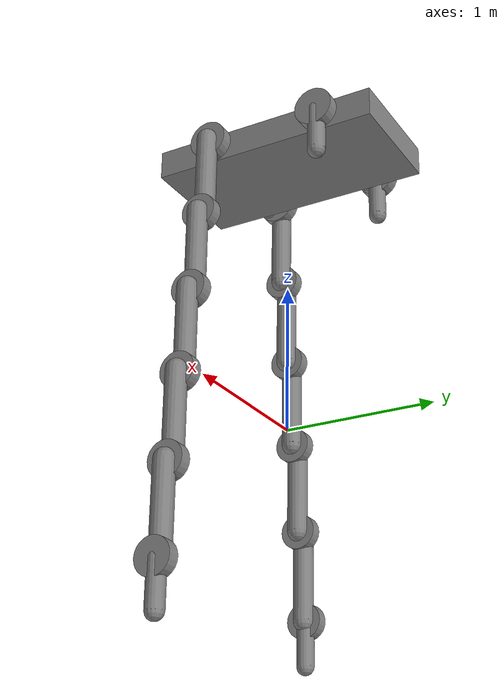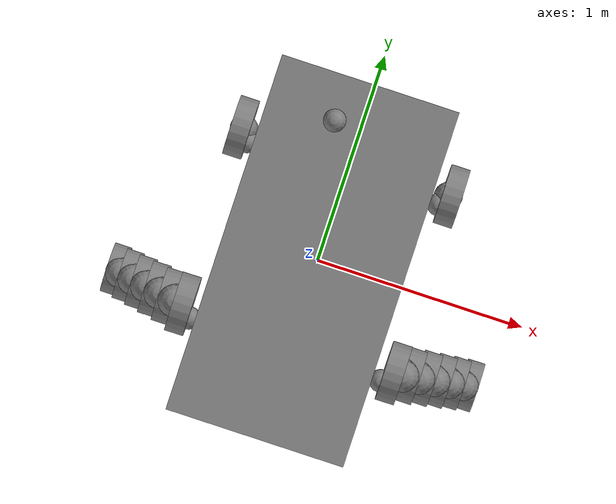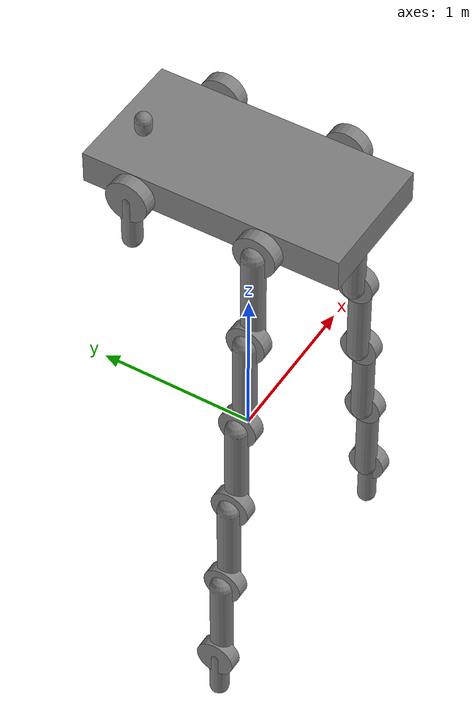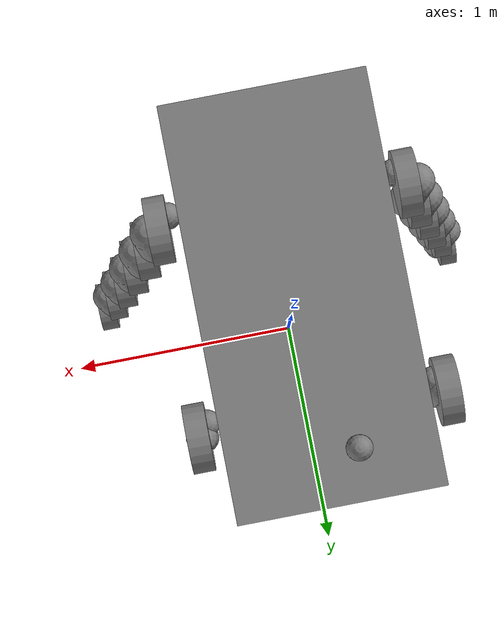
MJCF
<mujoco model="xmlrobot7_0_0">
	<compiler inertiafromgeom="true" />
	<option gravity="0 0 -9.8" />
	<size nconmax="500" njmax="1000" />
	<custom />
	<default />
	<asset />
	<worldbody>
		<body name="root" pos="0 0 2" quat="1.0 0.0 0.0 0.0">
			<geom name="geomroot" pos="-0.02 0 0.07" quat="1.0 0.0 0.0 0.0" size="0.15 0.15 0.02" type="box" />
			<body name="body1" pos="0 0 0" quat="1.0 0.0 0.0 0.0">
				<geom name="geombody1" pos="-0.02 0 0" quat="1.0 0.0 0.0 0.0" size="0.4 0.8 0.1" type="box" />
				<joint axis="0 0 1" damping="1.0" limited="true" name="joint_joint1" pos="0 0 0" range="-5 5" stiffness="2.0" type="hinge" />
				<body name="hand_mount1" pos="-0.1175 0.6 0.2" quat="0.70711 0.0 0.70711 0.0">
					<geom fromto="0 0 0 0.05 0 0" name="geomhand_mount1" quat="1.0 0.0 0.0 0.0" size="0.05" type="capsule" />
					<joint axis="1 0 0" damping="1.0" limited="true" name="joint_joint6" pos="0 0 0" range="-180 180" stiffness="2.0" type="hinge" />
				</body>
				<body name="limbmount4" pos="0.42 -0.4 0" quat="0.70711 0.0 0.70711 0.0">
					<geom fromto="0 0 0 0.05 0 0" name="geomlimbmount4" quat="1.0 0.0 0.0 0.0" size="0.05" type="capsule" />
					<joint axis="0 1 0" damping="1.0" limited="true" name="joint_joint5" pos="0 0 0" range="-45 45" stiffness="2.0" type="hinge" />
					<body name="limbmount4_new_new" pos="0 0.05 0" quat="0.70711 0.0 -0.70711 0.0">
						<geom euler="0 0 0" fromto="0 0 0 0.084 0 0" name="geomlimbmount4_new_new" pos="0 0 0" size="0.132" type="cylinder" />
						<joint axis="1 0 0" damping="1.0" limited="true" name="joint_limbmount4_new" pos="0 0 0" range="-45 45" stiffness="2.0" type="hinge" />
						<body name="limbmount4_new_new_new_new" pos="0.084 0 0" quat="0.70711 0.0 0.70711 0.0">
							<geom fromto="0 0 0 0.6 0 0" name="geomlimbmount4_new_new_new_new" quat="1.0 0.0 0.0 0.0" size="0.07" type="capsule" />
							<joint axis="0 1 0" damping="1.0" limited="true" name="joint_limbmount4_new_new_new" pos="0 0 0" range="-45 45" stiffness="2.0" type="hinge" />
							<body name="limbmount4_new_new_new_new_new_new" pos="0.6 0 0" quat="0.70711 0.0 -0.70711 0.0">
								<geom euler="0 0 0" fromto="0 0 0 0.084 0 0" name="geomlimbmount4_new_new_new_new_new_new" pos="0 0 0" size="0.122" type="cylinder" />
								<joint axis="1 0 0" damping="1.0" limited="true" name="joint_limbmount4_new_new_new_new_new" pos="0 0 0" range="-45 45" stiffness="2.0" type="hinge" />
								<body name="limbmount4_new_new_new_new_new_new_new_new" pos="0.084 0 0" quat="0.70711 0.0 0.70711 0.0">
									<geom fromto="0 0 0 0.6 0 0" name="geomlimbmount4_new_new_new_new_new_new_new_new" quat="1.0 0.0 0.0 0.0" size="0.07" type="capsule" />
									<joint axis="0 1 0" damping="1.0" limited="true" name="joint_limbmount4_new_new_new_new_new_new_new" pos="0 0 0" range="-45 45" stiffness="2.0" type="hinge" />
									<body name="limbmount4_new_new_new_new_new_new_new_new_new_new" pos="0.6 0 0" quat="0.70711 0.0 -0.70711 0.0">
										<geom euler="0 0 0" fromto="0 0 0 0.084 0 0" name="geomlimbmount4_new_new_new_new_new_new_new_new_new_new" pos="0 0 0" size="0.122" type="cylinder" />
										<joint axis="1 0 0" damping="1.0" limited="true" name="joint_limbmount4_new_new_new_new_new_new_new_new_new" pos="0 0 0" range="-45 45" stiffness="2.0" type="hinge" />
										<body name="limbmount4_new_new_new_new_new_new_new_new_new_new_new_new" pos="0.084 0 0" quat="0.70711 0.0 0.70711 0.0">
											<geom fromto="0 0 0 0.6 0 0" name="geomlimbmount4_new_new_new_new_new_new_new_new_new_new_new_new" quat="1.0 0.0 0.0 0.0" size="0.07" type="capsule" />
											<joint axis="0 1 0" damping="1.0" limited="true" name="joint_limbmount4_new_new_new_new_new_new_new_new_new_new_new" pos="0 0 0" range="-45 45" stiffness="2.0" type="hinge" />
											<body name="limbmount4_new_new_new_new_new_new_new_new_new_new_new_new_new_new" pos="0.6 0 0" quat="0.70711 0.0 -0.70711 0.0">
												<geom euler="0 0 0" fromto="0 0 0 0.084 0 0" name="geomlimbmount4_new_new_new_new_new_new_new_new_new_new_new_new_new_new" pos="0 0 0" size="0.122" type="cylinder" />
												<joint axis="1 0 0" damping="1.0" limited="true" name="joint_limbmount4_new_new_new_new_new_new_new_new_new_new_new_new_new" pos="0 0 0" range="-45 45" stiffness="2.0" type="hinge" />
												<body name="limbmount4_new_new_new_new_new_new_new_new_new_new_new_new_new_new_new_new" pos="0.084 0 0" quat="0.70711 0.0 0.70711 0.0">
													<geom fromto="0 0 0 0.6 0 0" name="geomlimbmount4_new_new_new_new_new_new_new_new_new_new_new_new_new_new_new_new" quat="1.0 0.0 0.0 0.0" size="0.07" type="capsule" />
													<joint axis="0 1 0" damping="1.0" limited="true" name="joint_limbmount4_new_new_new_new_new_new_new_new_new_new_new_new_new_new_new" pos="0 0 0" range="-45 45" stiffness="2.0" type="hinge" />
													<body name="limbmount4_new_new_new_new_new_new_new_new_new_new_new_new_new_new_new_new_new_new" pos="0.6 0 0" quat="0.70711 0.0 -0.70711 0.0">
														<geom euler="0 0 0" fromto="0 0 0 0.084 0 0" name="geomlimbmount4_new_new_new_new_new_new_new_new_new_new_new_new_new_new_new_new_new_new" pos="0 0 0" size="0.122" type="cylinder" />
														<joint axis="1 0 0" damping="1.0" limited="true" name="joint_limbmount4_new_new_new_new_new_new_new_new_new_new_new_new_new_new_new_new_new" pos="0 0 0" range="-45 45" stiffness="2.0" type="hinge" />
														<body name="limbmount4_new_new_new_new_new_new_new_new_new_new_new_new_new_new_new_new_new_new_new_new" pos="0.084 0 0" quat="0.70711 0.0 0.70711 0.0">
															<geom fromto="0 0 0 0.6 0 0" name="geomlimbmount4_new_new_new_new_new_new_new_new_new_new_new_new_new_new_new_new_new_new_new_new" quat="1.0 0.0 0.0 0.0" size="0.07" type="capsule" />
															<joint axis="0 1 0" damping="1.0" limited="true" name="joint_limbmount4_new_new_new_new_new_new_new_new_new_new_new_new_new_new_new_new_new_new_new" pos="0 0 0" range="-45 45" stiffness="2.0" type="hinge" />
															<body name="limbmount4_new_new_new_new_new_new_new_new_new_new_new_new_new_new_new_new_new_new_new_new_new_new" pos="0.6 0 0" quat="0.70711 0.0 -0.70711 0.0">
																<geom euler="0 0 0" fromto="0 0 0 0.084 0 0" name="geomlimbmount4_new_new_new_new_new_new_new_new_new_new_new_new_new_new_new_new_new_new_new_new_new_new" pos="0 0 0" size="0.122" type="cylinder" />
																<joint axis="1 0 0" damping="1.0" limited="true" name="joint_limbmount4_new_new_new_new_new_new_new_new_new_new_new_new_new_new_new_new_new_new_new_new_new" pos="0 0 0" range="-45 45" stiffness="2.0" type="hinge" />
																<body name="limbmount4_new_new_new_new_new_new_new_new_new_new_new_new_new_new_new_new_new_new_new_new_new_new_new_new" pos="0.03 0 0" quat="0.70711 0.0 0.70711 0.0">
																	<geom fromto="0 0 0 0.3 0 0" name="geomlimbmount4_new_new_new_new_new_new_new_new_new_new_new_new_new_new_new_new_new_new_new_new_new_new_new_new" quat="1.0 0.0 0.0 0.0" size="0.06" type="capsule" />
																	<joint axis="0 1 0" damping="1.0" limited="true" name="joint_limbmount4_new_new_new_new_new_new_new_new_new_new_new_new_new_new_new_new_new_new_new_new_new_new_new" pos="0 0 0" range="-45 45" stiffness="2.0" type="hinge" />
																</body>
															</body>
														</body>
													</body>
												</body>
											</body>
										</body>
									</body>
								</body>
							</body>
						</body>
					</body>
				</body>
				<body name="limbmount3" pos="-0.45 -0.4 0" quat="0.70711 0.0 0.70711 0.0">
					<geom fromto="0 0 0 0.05 0 0" name="geomlimbmount3" quat="-6.123233995736766e-17 1.0 0.0 0.0" size="0.05" type="capsule" />
					<joint axis="0 1 0" damping="1.0" limited="true" name="joint_joint4" pos="0 0 0" range="-45 45" stiffness="2.0" type="hinge" />
					<body name="motor1" pos="0 0.05 0" quat="-4.329780281177467e-17 0.7071067811865475 4.329780281177467e-17 -0.7071067811865477">
						<geom euler="0 0 0" fromto="0 0 0 0.084 0 0" name="geommotor1" pos="0 0 0" size="0.132" type="cylinder" />
						<joint axis="1 0 0" damping="1.0" limited="true" name="joint_joint7" pos="0 0 0" range="-45 45" stiffness="2.0" type="hinge" />
						<body name="limblink2" pos="0.084 0 0" quat="0.70711 0.0 0.70711 0.0">
							<geom fromto="0 0 0 0.6 0 0" name="geomlimblink2" quat="1.0 0.0 0.0 0.0" size="0.07" type="capsule" />
							<joint axis="0 1 0" damping="1.0" limited="true" name="joint_joint10" pos="0 0 0" range="-45 45" stiffness="2.0" type="hinge" />
							<body name="motor_link_end1" pos="0.6 0 0" quat="0.70711 0.0 -0.70711 0.0">
								<geom euler="0 0 0" fromto="0 0 0 0.084 0 0" name="geommotor_link_end1" pos="0 0 0" size="0.122" type="cylinder" />
								<joint axis="1 0 0" damping="1.0" limited="true" name="joint_joint11" pos="0 0 0" range="-45 45" stiffness="2.0" type="hinge" />
								<body name="limblink3" pos="0.084 0 0" quat="0.70711 0.0 0.70711 0.0">
									<geom fromto="0 0 0 0.6 0 0" name="geomlimblink3" quat="1.0 0.0 0.0 0.0" size="0.07" type="capsule" />
									<joint axis="0 1 0" damping="1.0" limited="true" name="joint_joint12" pos="0 0 0" range="-45 45" stiffness="2.0" type="hinge" />
									<body name="motor_link_end2" pos="0.6 0 0" quat="0.70711 0.0 -0.70711 0.0">
										<geom euler="0 0 0" fromto="0 0 0 0.084 0 0" name="geommotor_link_end2" pos="0 0 0" size="0.122" type="cylinder" />
										<joint axis="1 0 0" damping="1.0" limited="true" name="joint_joint13" pos="0 0 0" range="-45 45" stiffness="2.0" type="hinge" />
										<body name="limblink4" pos="0.084 0 0" quat="0.70711 0.0 0.70711 0.0">
											<geom fromto="0 0 0 0.6 0 0" name="geomlimblink4" quat="1.0 0.0 0.0 0.0" size="0.07" type="capsule" />
											<joint axis="0 1 0" damping="1.0" limited="true" name="joint_joint14" pos="0 0 0" range="-45 45" stiffness="2.0" type="hinge" />
											<body name="motor_link_end3" pos="0.6 0 0" quat="0.70711 0.0 -0.70711 0.0">
												<geom euler="0 0 0" fromto="0 0 0 0.084 0 0" name="geommotor_link_end3" pos="0 0 0" size="0.122" type="cylinder" />
												<joint axis="1 0 0" damping="1.0" limited="true" name="joint_joint15" pos="0 0 0" range="-45 45" stiffness="2.0" type="hinge" />
												<body name="limblink5" pos="0.084 0 0" quat="0.70711 0.0 0.70711 0.0">
													<geom fromto="0 0 0 0.6 0 0" name="geomlimblink5" quat="1.0 0.0 0.0 0.0" size="0.07" type="capsule" />
													<joint axis="0 1 0" damping="1.0" limited="true" name="joint_joint16" pos="0 0 0" range="-45 45" stiffness="2.0" type="hinge" />
													<body name="motor_link_end4" pos="0.6 0 0" quat="0.70711 0.0 -0.70711 0.0">
														<geom euler="0 0 0" fromto="0 0 0 0.084 0 0" name="geommotor_link_end4" pos="0 0 0" size="0.122" type="cylinder" />
														<joint axis="1 0 0" damping="1.0" limited="true" name="joint_joint17" pos="0 0 0" range="-45 45" stiffness="2.0" type="hinge" />
														<body name="limblink6" pos="0.084 0 0" quat="0.70711 0.0 0.70711 0.0">
															<geom fromto="0 0 0 0.6 0 0" name="geomlimblink6" quat="1.0 0.0 0.0 0.0" size="0.07" type="capsule" />
															<joint axis="0 1 0" damping="1.0" limited="true" name="joint_joint18" pos="0 0 0" range="-45 45" stiffness="2.0" type="hinge" />
															<body name="motor_link_end5" pos="0.6 0 0" quat="0.70711 0.0 -0.70711 0.0">
																<geom euler="0 0 0" fromto="0 0 0 0.084 0 0" name="geommotor_link_end5" pos="0 0 0" size="0.122" type="cylinder" />
																<joint axis="1 0 0" damping="1.0" limited="true" name="joint_joint19" pos="0 0 0" range="-45 45" stiffness="2.0" type="hinge" />
																<body name="short_limblink2" pos="0.03 0 0" quat="0.70711 0.0 0.70711 0.0">
																	<geom fromto="0 0 0 0.3 0 0" name="geomshort_limblink2" quat="1.0 0.0 0.0 0.0" size="0.06" type="capsule" />
																	<joint axis="0 1 0" damping="1.0" limited="true" name="joint_joint20" pos="0 0 0" range="-45 45" stiffness="2.0" type="hinge" />
																</body>
															</body>
														</body>
													</body>
												</body>
											</body>
										</body>
									</body>
								</body>
							</body>
						</body>
					</body>
				</body>
				<body name="limbmount2" pos="-0.45 0.4 0" quat="0.70711 0.0 0.70711 0.0">
					<geom fromto="0 0 0 0.05 0 0" name="geomlimbmount2" quat="-6.123233995736766e-17 1.0 0.0 0.0" size="0.05" type="capsule" />
					<joint axis="0 1 0" damping="1.0" limited="true" name="joint_joint3" pos="0 0 0" range="-45 45" stiffness="2.0" type="hinge" />
					<body name="limbmount2_new_new" pos="0 0.05 0" quat="-4.329780281177467e-17 0.7071067811865475 4.329780281177467e-17 -0.7071067811865477">
						<geom euler="0 0 0" fromto="0 0 0 0.084 0 0" name="geomlimbmount2_new_new" pos="0 0 0" size="0.132" type="cylinder" />
						<joint axis="1 0 0" damping="1.0" limited="true" name="joint_limbmount2_new" pos="0 0 0" range="-45 45" stiffness="2.0" type="hinge" />
						<body name="limbmount2_new_new_new_new" pos="0.03 0 0" quat="0.70711 0.0 0.70711 0.0">
							<geom fromto="0 0 0 0.3 0 0" name="geomlimbmount2_new_new_new_new" quat="1.0 0.0 0.0 0.0" size="0.06" type="capsule" />
							<joint axis="0 1 0" damping="1.0" limited="true" name="joint_limbmount2_new_new_new" pos="0 0 0" range="-45 45" stiffness="2.0" type="hinge" />
						</body>
					</body>
				</body>
				<body name="limbmount1" pos="0.42 0.4 0" quat="0.70711 0.0 0.70711 0.0">
					<geom fromto="0 0 0 0.05 0 0" name="geomlimbmount1" quat="1.0 0.0 0.0 0.0" size="0.05" type="capsule" />
					<joint axis="0 1 0" damping="1.0" limited="true" name="joint_joint2" pos="0 0 0" range="-45 45" stiffness="2.0" type="hinge" />
					<body name="motor2" pos="0 0.05 0" quat="0.70711 0.0 -0.70711 0.0">
						<geom euler="0 0 0" fromto="0 0 0 0.084 0 0" name="geommotor2" pos="0 0 0" size="0.132" type="cylinder" />
						<joint axis="1 0 0" damping="1.0" limited="true" name="joint_joint8" pos="0 0 0" range="-45 45" stiffness="2.0" type="hinge" />
						<body name="short_limblink1" pos="0.03 0 0" quat="0.70711 0.0 0.70711 0.0">
							<geom fromto="0 0 0 0.3 0 0" name="geomshort_limblink1" quat="1.0 0.0 0.0 0.0" size="0.06" type="capsule" />
							<joint axis="0 1 0" damping="1.0" limited="true" name="joint_joint9" pos="0 0 0" range="-45 45" stiffness="2.0" type="hinge" />
						</body>
					</body>
				</body>
			</body>
		</body>
	</worldbody>
	<actuator>
		<motor ctrllimited="true" ctrlrange="-1 1" gear="22.5" joint="joint_joint1" />
		<motor ctrllimited="true" ctrlrange="-1 1" gear="22.5" joint="joint_joint6" />
		<motor ctrllimited="true" ctrlrange="-1 1" gear="22.5" joint="joint_joint5" />
		<motor ctrllimited="true" ctrlrange="-1 1" gear="22.5" joint="joint_limbmount4_new" />
		<motor ctrllimited="true" ctrlrange="-1 1" gear="22.5" joint="joint_limbmount4_new_new_new" />
		<motor ctrllimited="true" ctrlrange="-1 1" gear="22.5" joint="joint_limbmount4_new_new_new_new_new" />
		<motor ctrllimited="true" ctrlrange="-1 1" gear="22.5" joint="joint_limbmount4_new_new_new_new_new_new_new" />
		<motor ctrllimited="true" ctrlrange="-1 1" gear="22.5" joint="joint_limbmount4_new_new_new_new_new_new_new_new_new" />
		<motor ctrllimited="true" ctrlrange="-1 1" gear="22.5" joint="joint_limbmount4_new_new_new_new_new_new_new_new_new_new_new" />
		<motor ctrllimited="true" ctrlrange="-1 1" gear="22.5" joint="joint_limbmount4_new_new_new_new_new_new_new_new_new_new_new_new_new" />
		<motor ctrllimited="true" ctrlrange="-1 1" gear="22.5" joint="joint_limbmount4_new_new_new_new_new_new_new_new_new_new_new_new_new_new_new" />
		<motor ctrllimited="true" ctrlrange="-1 1" gear="22.5" joint="joint_limbmount4_new_new_new_new_new_new_new_new_new_new_new_new_new_new_new_new_new" />
		<motor ctrllimited="true" ctrlrange="-1 1" gear="22.5" joint="joint_limbmount4_new_new_new_new_new_new_new_new_new_new_new_new_new_new_new_new_new_new_new" />
		<motor ctrllimited="true" ctrlrange="-1 1" gear="22.5" joint="joint_limbmount4_new_new_new_new_new_new_new_new_new_new_new_new_new_new_new_new_new_new_new_new_new" />
		<motor ctrllimited="true" ctrlrange="-1 1" gear="22.5" joint="joint_limbmount4_new_new_new_new_new_new_new_new_new_new_new_new_new_new_new_new_new_new_new_new_new_new_new" />
		<motor ctrllimited="true" ctrlrange="-1 1" gear="22.5" joint="joint_joint4" />
		<motor ctrllimited="true" ctrlrange="-1 1" gear="22.5" joint="joint_joint7" />
		<motor ctrllimited="true" ctrlrange="-1 1" gear="22.5" joint="joint_joint10" />
		<motor ctrllimited="true" ctrlrange="-1 1" gear="22.5" joint="joint_joint11" />
		<motor ctrllimited="true" ctrlrange="-1 1" gear="22.5" joint="joint_joint12" />
		<motor ctrllimited="true" ctrlrange="-1 1" gear="22.5" joint="joint_joint13" />
		<motor ctrllimited="true" ctrlrange="-1 1" gear="22.5" joint="joint_joint14" />
		<motor ctrllimited="true" ctrlrange="-1 1" gear="22.5" joint="joint_joint15" />
		<motor ctrllimited="true" ctrlrange="-1 1" gear="22.5" joint="joint_joint16" />
		<motor ctrllimited="true" ctrlrange="-1 1" gear="22.5" joint="joint_joint17" />
		<motor ctrllimited="true" ctrlrange="-1 1" gear="22.5" joint="joint_joint18" />
		<motor ctrllimited="true" ctrlrange="-1 1" gear="22.5" joint="joint_joint19" />
		<motor ctrllimited="true" ctrlrange="-1 1" gear="22.5" joint="joint_joint20" />
		<motor ctrllimited="true" ctrlrange="-1 1" gear="22.5" joint="joint_joint3" />
		<motor ctrllimited="true" ctrlrange="-1 1" gear="22.5" joint="joint_limbmount2_new" />
		<motor ctrllimited="true" ctrlrange="-1 1" gear="22.5" joint="joint_limbmount2_new_new_new" />
		<motor ctrllimited="true" ctrlrange="-1 1" gear="22.5" joint="joint_joint2" />
		<motor ctrllimited="true" ctrlrange="-1 1" gear="22.5" joint="joint_joint8" />
		<motor ctrllimited="true" ctrlrange="-1 1" gear="22.5" joint="joint_joint9" />
	</actuator>
</mujoco>
